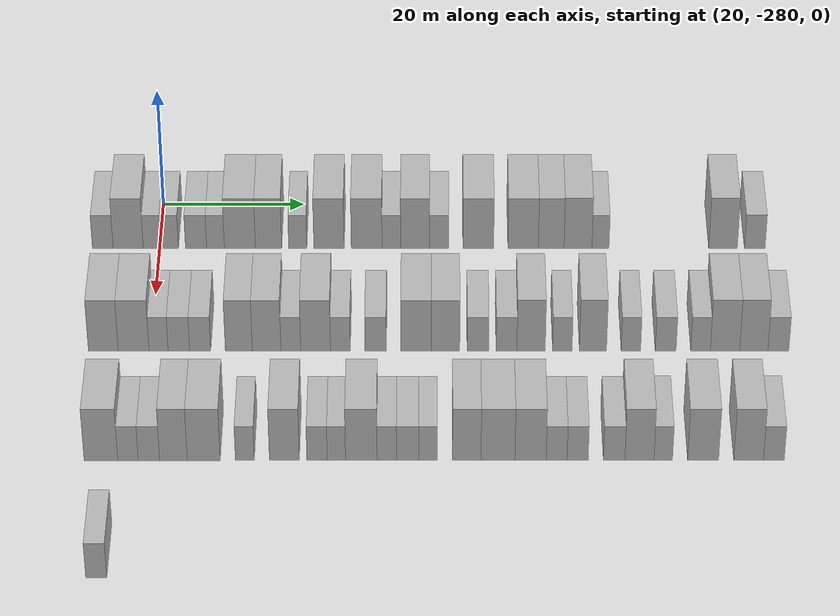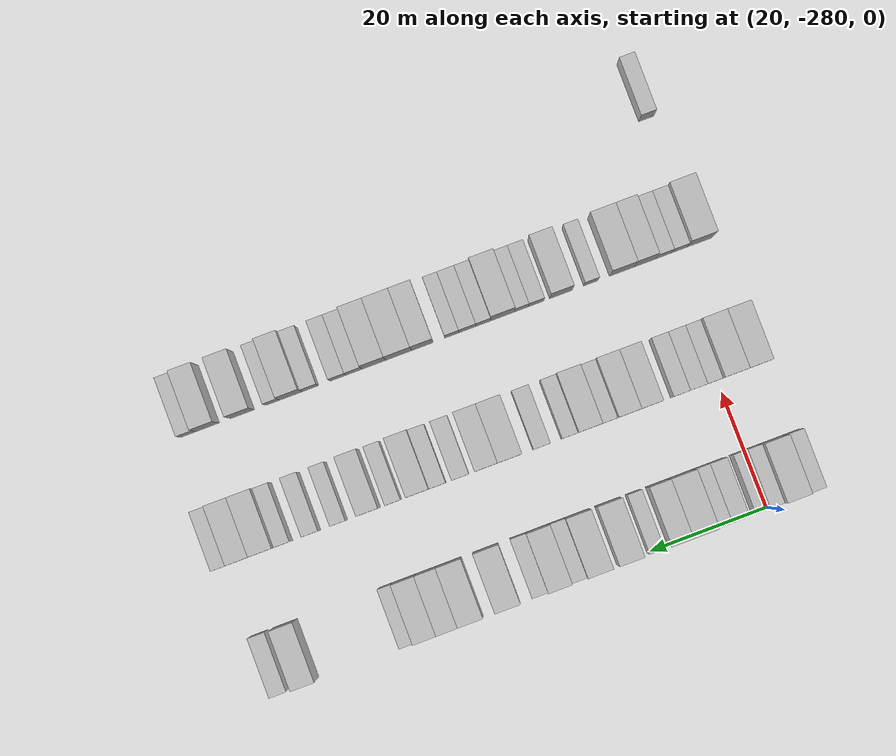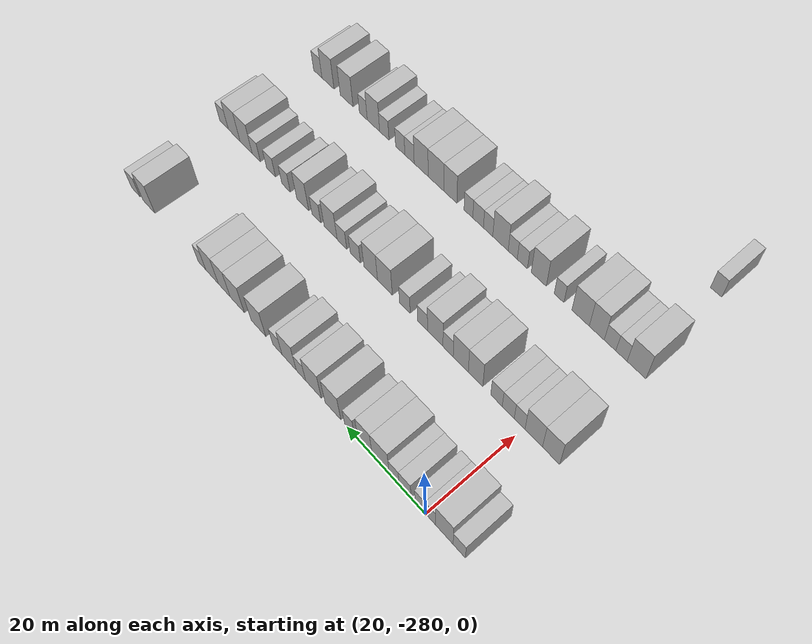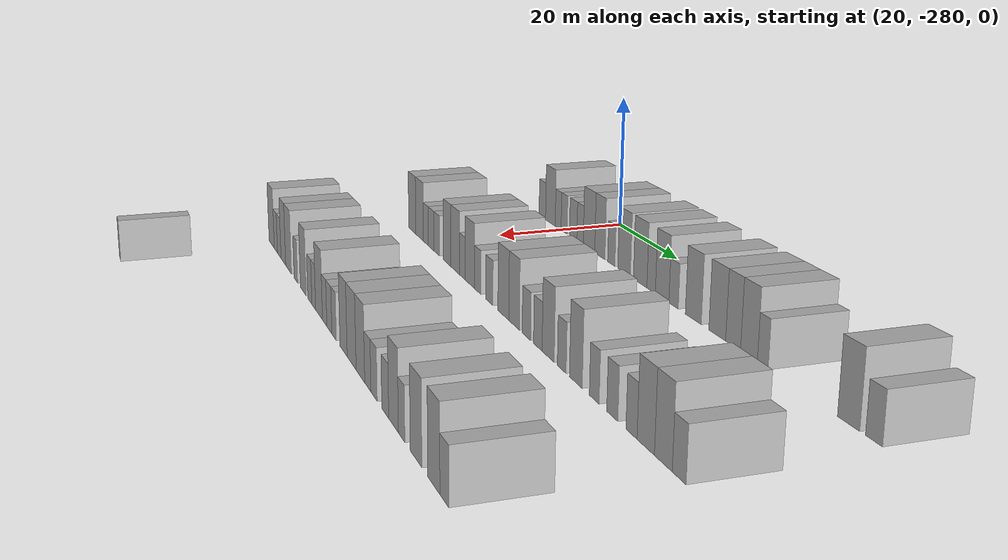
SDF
<sdf version="1.6">
 <world name="default">
  <model name="building_25">
   <static>1</static>
   <pose>25.0000 -288.0265 0 0.000000 0.000000 0.000000</pose>
   <link name="link">
    <pose>0 0 3.00 0 0 0</pose>
    <collision name="collision"><geometry><box><size>10.0000 2.8990 6.0000</size></box></geometry></collision>
    <visual name="visual">
     <cast_shadows>0</cast_shadows>
     <geometry><box><size>10.0000 2.8990 6.0000</size></box></geometry>
     <material>
      <script>
       <uri>model://HANNAS_wall/materials/scripts</uri>
       <uri>model://HANNAS_wall/materials/textures</uri>
       <name>vrc/HANNAS_wall</name>
      </script>
     </material>
    </visual>
   </link>
  </model>
  <model name="building_26">
   <static>1</static>
   <pose>25.0000 -284.4614 0 0.000000 0.000000 0.000000</pose>
   <link name="link">
    <pose>0 0 4.50 0 0 0</pose>
    <collision name="collision"><geometry><box><size>10.0000 4.2312 9.0000</size></box></geometry></collision>
    <visual name="visual">
     <cast_shadows>0</cast_shadows>
     <geometry><box><size>10.0000 4.2312 9.0000</size></box></geometry>
     <material>
      <script>
       <uri>model://HANNAS_wall/materials/scripts</uri>
       <uri>model://HANNAS_wall/materials/textures</uri>
       <name>vrc/HANNAS_wall</name>
      </script>
     </material>
    </visual>
   </link>
  </model>
  <model name="building_27">
   <static>1</static>
   <pose>25.0000 -281.1152 0 0.000000 0.000000 0.000000</pose>
   <link name="link">
    <pose>0 0 3.00 0 0 0</pose>
    <collision name="collision"><geometry><box><size>10.0000 2.4614 6.0000</size></box></geometry></collision>
    <visual name="visual">
     <cast_shadows>0</cast_shadows>
     <geometry><box><size>10.0000 2.4614 6.0000</size></box></geometry>
     <material>
      <script>
       <uri>model://HANNAS_wall/materials/scripts</uri>
       <uri>model://HANNAS_wall/materials/textures</uri>
       <name>vrc/HANNAS_wall</name>
      </script>
     </material>
    </visual>
   </link>
  </model>
  <model name="building_28">
   <static>1</static>
   <pose>25.0000 -278.6442 0 0.000000 0.000000 0.000000</pose>
   <link name="link">
    <pose>0 0 3.00 0 0 0</pose>
    <collision name="collision"><geometry><box><size>10.0000 2.4805 6.0000</size></box></geometry></collision>
    <visual name="visual">
     <cast_shadows>0</cast_shadows>
     <geometry><box><size>10.0000 2.4805 6.0000</size></box></geometry>
     <material>
      <script>
       <uri>model://HANNAS_wall/materials/scripts</uri>
       <uri>model://HANNAS_wall/materials/textures</uri>
       <name>vrc/HANNAS_wall</name>
      </script>
     </material>
    </visual>
   </link>
  </model>
  <model name="building_29">
   <static>1</static>
   <pose>25.0000 -274.9256 0 0.000000 0.000000 0.000000</pose>
   <link name="link">
    <pose>0 0 3.00 0 0 0</pose>
    <collision name="collision"><geometry><box><size>10.0000 2.9566 6.0000</size></box></geometry></collision>
    <visual name="visual">
     <cast_shadows>0</cast_shadows>
     <geometry><box><size>10.0000 2.9566 6.0000</size></box></geometry>
     <material>
      <script>
       <uri>model://HANNAS_wall/materials/scripts</uri>
       <uri>model://HANNAS_wall/materials/textures</uri>
       <name>vrc/HANNAS_wall</name>
      </script>
     </material>
    </visual>
   </link>
  </model>
  <model name="building_30">
   <static>1</static>
   <pose>25.0000 -272.1992 0 0.000000 0.000000 0.000000</pose>
   <link name="link">
    <pose>0 0 3.00 0 0 0</pose>
    <collision name="collision"><geometry><box><size>10.0000 2.4963 6.0000</size></box></geometry></collision>
    <visual name="visual">
     <cast_shadows>0</cast_shadows>
     <geometry><box><size>10.0000 2.4963 6.0000</size></box></geometry>
     <material>
      <script>
       <uri>model://HANNAS_wall/materials/scripts</uri>
       <uri>model://HANNAS_wall/materials/textures</uri>
       <name>vrc/HANNAS_wall</name>
      </script>
     </material>
    </visual>
   </link>
  </model>
  <model name="building_31">
   <static>1</static>
   <pose>25.0000 -268.7673 0 0.000000 0.000000 0.000000</pose>
   <link name="link">
    <pose>0 0 4.50 0 0 0</pose>
    <collision name="collision"><geometry><box><size>10.0000 4.3674 9.0000</size></box></geometry></collision>
    <visual name="visual">
     <cast_shadows>0</cast_shadows>
     <geometry><box><size>10.0000 4.3674 9.0000</size></box></geometry>
     <material>
      <script>
       <uri>model://HANNAS_wall/materials/scripts</uri>
       <uri>model://HANNAS_wall/materials/textures</uri>
       <name>vrc/HANNAS_wall</name>
      </script>
     </material>
    </visual>
   </link>
  </model>
  <model name="building_32">
   <static>1</static>
   <pose>25.0000 -264.7406 0 0.000000 0.000000 0.000000</pose>
   <link name="link">
    <pose>0 0 4.50 0 0 0</pose>
    <collision name="collision"><geometry><box><size>10.0000 3.6861 9.0000</size></box></geometry></collision>
    <visual name="visual">
     <cast_shadows>0</cast_shadows>
     <geometry><box><size>10.0000 3.6861 9.0000</size></box></geometry>
     <material>
      <script>
       <uri>model://HANNAS_wall/materials/scripts</uri>
       <uri>model://HANNAS_wall/materials/textures</uri>
       <name>vrc/HANNAS_wall</name>
      </script>
     </material>
    </visual>
   </link>
  </model>
  <model name="building_33">
   <static>1</static>
   <pose>25.0000 -260.6322 0 0.000000 0.000000 0.000000</pose>
   <link name="link">
    <pose>0 0 3.00 0 0 0</pose>
    <collision name="collision"><geometry><box><size>10.0000 2.5305 6.0000</size></box></geometry></collision>
    <visual name="visual">
     <cast_shadows>0</cast_shadows>
     <geometry><box><size>10.0000 2.5305 6.0000</size></box></geometry>
     <material>
      <script>
       <uri>model://HANNAS_wall/materials/scripts</uri>
       <uri>model://HANNAS_wall/materials/textures</uri>
       <name>vrc/HANNAS_wall</name>
      </script>
     </material>
    </visual>
   </link>
  </model>
  <model name="building_34">
   <static>1</static>
   <pose>25.0000 -256.2392 0 0.000000 0.000000 0.000000</pose>
   <link name="link">
    <pose>0 0 4.50 0 0 0</pose>
    <collision name="collision"><geometry><box><size>10.0000 4.2555 9.0000</size></box></geometry></collision>
    <visual name="visual">
     <cast_shadows>0</cast_shadows>
     <geometry><box><size>10.0000 4.2555 9.0000</size></box></geometry>
     <material>
      <script>
       <uri>model://HANNAS_wall/materials/scripts</uri>
       <uri>model://HANNAS_wall/materials/textures</uri>
       <name>vrc/HANNAS_wall</name>
      </script>
     </material>
    </visual>
   </link>
  </model>
  <model name="building_35">
   <static>1</static>
   <pose>25.0000 -250.9483 0 0.000000 0.000000 0.000000</pose>
   <link name="link">
    <pose>0 0 4.50 0 0 0</pose>
    <collision name="collision"><geometry><box><size>10.0000 4.3264 9.0000</size></box></geometry></collision>
    <visual name="visual">
     <cast_shadows>0</cast_shadows>
     <geometry><box><size>10.0000 4.3264 9.0000</size></box></geometry>
     <material>
      <script>
       <uri>model://HANNAS_wall/materials/scripts</uri>
       <uri>model://HANNAS_wall/materials/textures</uri>
       <name>vrc/HANNAS_wall</name>
      </script>
     </material>
    </visual>
   </link>
  </model>
  <model name="building_36">
   <static>1</static>
   <pose>25.0000 -247.4791 0 0.000000 0.000000 0.000000</pose>
   <link name="link">
    <pose>0 0 3.00 0 0 0</pose>
    <collision name="collision"><geometry><box><size>10.0000 2.6121 6.0000</size></box></geometry></collision>
    <visual name="visual">
     <cast_shadows>0</cast_shadows>
     <geometry><box><size>10.0000 2.6121 6.0000</size></box></geometry>
     <material>
      <script>
       <uri>model://HANNAS_wall/materials/scripts</uri>
       <uri>model://HANNAS_wall/materials/textures</uri>
       <name>vrc/HANNAS_wall</name>
      </script>
     </material>
    </visual>
   </link>
  </model>
  <model name="building_37">
   <static>1</static>
   <pose>25.0000 -244.1470 0 0.000000 0.000000 0.000000</pose>
   <link name="link">
    <pose>0 0 4.50 0 0 0</pose>
    <collision name="collision"><geometry><box><size>10.0000 4.0521 9.0000</size></box></geometry></collision>
    <visual name="visual">
     <cast_shadows>0</cast_shadows>
     <geometry><box><size>10.0000 4.0521 9.0000</size></box></geometry>
     <material>
      <script>
       <uri>model://HANNAS_wall/materials/scripts</uri>
       <uri>model://HANNAS_wall/materials/textures</uri>
       <name>vrc/HANNAS_wall</name>
      </script>
     </material>
    </visual>
   </link>
  </model>
  <model name="building_38">
   <static>1</static>
   <pose>25.0000 -240.7770 0 0.000000 0.000000 0.000000</pose>
   <link name="link">
    <pose>0 0 3.00 0 0 0</pose>
    <collision name="collision"><geometry><box><size>10.0000 2.6880 6.0000</size></box></geometry></collision>
    <visual name="visual">
     <cast_shadows>0</cast_shadows>
     <geometry><box><size>10.0000 2.6880 6.0000</size></box></geometry>
     <material>
      <script>
       <uri>model://HANNAS_wall/materials/scripts</uri>
       <uri>model://HANNAS_wall/materials/textures</uri>
       <name>vrc/HANNAS_wall</name>
      </script>
     </material>
    </visual>
   </link>
  </model>
  <model name="building_39">
   <static>1</static>
   <pose>25.0000 -235.2704 0 0.000000 0.000000 0.000000</pose>
   <link name="link">
    <pose>0 0 4.50 0 0 0</pose>
    <collision name="collision"><geometry><box><size>10.0000 4.3251 9.0000</size></box></geometry></collision>
    <visual name="visual">
     <cast_shadows>0</cast_shadows>
     <geometry><box><size>10.0000 4.3251 9.0000</size></box></geometry>
     <material>
      <script>
       <uri>model://HANNAS_wall/materials/scripts</uri>
       <uri>model://HANNAS_wall/materials/textures</uri>
       <name>vrc/HANNAS_wall</name>
      </script>
     </material>
    </visual>
   </link>
  </model>
  <model name="building_40">
   <static>1</static>
   <pose>25.0000 -228.9742 0 0.000000 0.000000 0.000000</pose>
   <link name="link">
    <pose>0 0 4.50 0 0 0</pose>
    <collision name="collision"><geometry><box><size>10.0000 4.2672 9.0000</size></box></geometry></collision>
    <visual name="visual">
     <cast_shadows>0</cast_shadows>
     <geometry><box><size>10.0000 4.2672 9.0000</size></box></geometry>
     <material>
      <script>
       <uri>model://HANNAS_wall/materials/scripts</uri>
       <uri>model://HANNAS_wall/materials/textures</uri>
       <name>vrc/HANNAS_wall</name>
      </script>
     </material>
    </visual>
   </link>
  </model>
  <model name="building_41">
   <static>1</static>
   <pose>25.0000 -225.0343 0 0.000000 0.000000 0.000000</pose>
   <link name="link">
    <pose>0 0 4.50 0 0 0</pose>
    <collision name="collision"><geometry><box><size>10.0000 3.6128 9.0000</size></box></geometry></collision>
    <visual name="visual">
     <cast_shadows>0</cast_shadows>
     <geometry><box><size>10.0000 3.6128 9.0000</size></box></geometry>
     <material>
      <script>
       <uri>model://HANNAS_wall/materials/scripts</uri>
       <uri>model://HANNAS_wall/materials/textures</uri>
       <name>vrc/HANNAS_wall</name>
      </script>
     </material>
    </visual>
   </link>
  </model>
  <model name="building_42">
   <static>1</static>
   <pose>25.0000 -221.2701 0 0.000000 0.000000 0.000000</pose>
   <link name="link">
    <pose>0 0 4.50 0 0 0</pose>
    <collision name="collision"><geometry><box><size>10.0000 3.9156 9.0000</size></box></geometry></collision>
    <visual name="visual">
     <cast_shadows>0</cast_shadows>
     <geometry><box><size>10.0000 3.9156 9.0000</size></box></geometry>
     <material>
      <script>
       <uri>model://HANNAS_wall/materials/scripts</uri>
       <uri>model://HANNAS_wall/materials/textures</uri>
       <name>vrc/HANNAS_wall</name>
      </script>
     </material>
    </visual>
   </link>
  </model>
  <model name="building_43">
   <static>1</static>
   <pose>25.0000 -218.1112 0 0.000000 0.000000 0.000000</pose>
   <link name="link">
    <pose>0 0 3.00 0 0 0</pose>
    <collision name="collision"><geometry><box><size>10.0000 2.4021 6.0000</size></box></geometry></collision>
    <visual name="visual">
     <cast_shadows>0</cast_shadows>
     <geometry><box><size>10.0000 2.4021 6.0000</size></box></geometry>
     <material>
      <script>
       <uri>model://HANNAS_wall/materials/scripts</uri>
       <uri>model://HANNAS_wall/materials/textures</uri>
       <name>vrc/HANNAS_wall</name>
      </script>
     </material>
    </visual>
   </link>
  </model>
  <model name="building_44">
   <static>1</static>
   <pose>25.0000 -200.8875 0 0.000000 0.000000 0.000000</pose>
   <link name="link">
    <pose>0 0 4.50 0 0 0</pose>
    <collision name="collision"><geometry><box><size>10.0000 4.0151 9.0000</size></box></geometry></collision>
    <visual name="visual">
     <cast_shadows>0</cast_shadows>
     <geometry><box><size>10.0000 4.0151 9.0000</size></box></geometry>
     <material>
      <script>
       <uri>model://HANNAS_wall/materials/scripts</uri>
       <uri>model://HANNAS_wall/materials/textures</uri>
       <name>vrc/HANNAS_wall</name>
      </script>
     </material>
    </visual>
   </link>
  </model>
  <model name="building_45">
   <static>1</static>
   <pose>25.0000 -196.4308 0 0.000000 0.000000 0.000000</pose>
   <link name="link">
    <pose>0 0 3.00 0 0 0</pose>
    <collision name="collision"><geometry><box><size>10.0000 2.8984 6.0000</size></box></geometry></collision>
    <visual name="visual">
     <cast_shadows>0</cast_shadows>
     <geometry><box><size>10.0000 2.8984 6.0000</size></box></geometry>
     <material>
      <script>
       <uri>model://HANNAS_wall/materials/scripts</uri>
       <uri>model://HANNAS_wall/materials/textures</uri>
       <name>vrc/HANNAS_wall</name>
      </script>
     </material>
    </visual>
   </link>
  </model>
  <model name="building_215">
   <static>1</static>
   <pose>47.0000 -286.4826 0 0.000000 0.000000 0.000000</pose>
   <link name="link">
    <pose>0 0 4.50 0 0 0</pose>
    <collision name="collision"><geometry><box><size>10.0000 4.0450 9.0000</size></box></geometry></collision>
    <visual name="visual">
     <cast_shadows>0</cast_shadows>
     <geometry><box><size>10.0000 4.0450 9.0000</size></box></geometry>
     <material>
      <script>
       <uri>model://HANNAS_wall/materials/scripts</uri>
       <uri>model://HANNAS_wall/materials/textures</uri>
       <name>vrc/HANNAS_wall</name>
      </script>
     </material>
    </visual>
   </link>
  </model>
  <model name="building_216">
   <static>1</static>
   <pose>47.0000 -282.3678 0 0.000000 0.000000 0.000000</pose>
   <link name="link">
    <pose>0 0 4.50 0 0 0</pose>
    <collision name="collision"><geometry><box><size>10.0000 4.1846 9.0000</size></box></geometry></collision>
    <visual name="visual">
     <cast_shadows>0</cast_shadows>
     <geometry><box><size>10.0000 4.1846 9.0000</size></box></geometry>
     <material>
      <script>
       <uri>model://HANNAS_wall/materials/scripts</uri>
       <uri>model://HANNAS_wall/materials/textures</uri>
       <name>vrc/HANNAS_wall</name>
      </script>
     </material>
    </visual>
   </link>
  </model>
  <model name="building_217">
   <static>1</static>
   <pose>47.0000 -278.9745 0 0.000000 0.000000 0.000000</pose>
   <link name="link">
    <pose>0 0 3.00 0 0 0</pose>
    <collision name="collision"><geometry><box><size>10.0000 2.6021 6.0000</size></box></geometry></collision>
    <visual name="visual">
     <cast_shadows>0</cast_shadows>
     <geometry><box><size>10.0000 2.6021 6.0000</size></box></geometry>
     <material>
      <script>
       <uri>model://HANNAS_wall/materials/scripts</uri>
       <uri>model://HANNAS_wall/materials/textures</uri>
       <name>vrc/HANNAS_wall</name>
      </script>
     </material>
    </visual>
   </link>
  </model>
  <model name="building_218">
   <static>1</static>
   <pose>47.0000 -276.2022 0 0.000000 0.000000 0.000000</pose>
   <link name="link">
    <pose>0 0 3.00 0 0 0</pose>
    <collision name="collision"><geometry><box><size>10.0000 2.9424 6.0000</size></box></geometry></collision>
    <visual name="visual">
     <cast_shadows>0</cast_shadows>
     <geometry><box><size>10.0000 2.9424 6.0000</size></box></geometry>
     <material>
      <script>
       <uri>model://HANNAS_wall/materials/scripts</uri>
       <uri>model://HANNAS_wall/materials/textures</uri>
       <name>vrc/HANNAS_wall</name>
      </script>
     </material>
    </visual>
   </link>
  </model>
  <model name="building_219">
   <static>1</static>
   <pose>47.0000 -273.3032 0 0.000000 0.000000 0.000000</pose>
   <link name="link">
    <pose>0 0 3.00 0 0 0</pose>
    <collision name="collision"><geometry><box><size>10.0000 2.8556 6.0000</size></box></geometry></collision>
    <visual name="visual">
     <cast_shadows>0</cast_shadows>
     <geometry><box><size>10.0000 2.8556 6.0000</size></box></geometry>
     <material>
      <script>
       <uri>model://HANNAS_wall/materials/scripts</uri>
       <uri>model://HANNAS_wall/materials/textures</uri>
       <name>vrc/HANNAS_wall</name>
      </script>
     </material>
    </visual>
   </link>
  </model>
  <model name="building_220">
   <static>1</static>
   <pose>47.0000 -268.0409 0 0.000000 0.000000 0.000000</pose>
   <link name="link">
    <pose>0 0 4.50 0 0 0</pose>
    <collision name="collision"><geometry><box><size>10.0000 3.6691 9.0000</size></box></geometry></collision>
    <visual name="visual">
     <cast_shadows>0</cast_shadows>
     <geometry><box><size>10.0000 3.6691 9.0000</size></box></geometry>
     <material>
      <script>
       <uri>model://HANNAS_wall/materials/scripts</uri>
       <uri>model://HANNAS_wall/materials/textures</uri>
       <name>vrc/HANNAS_wall</name>
      </script>
     </material>
    </visual>
   </link>
  </model>
  <model name="building_221">
   <static>1</static>
   <pose>47.0000 -264.2662 0 0.000000 0.000000 0.000000</pose>
   <link name="link">
    <pose>0 0 4.50 0 0 0</pose>
    <collision name="collision"><geometry><box><size>10.0000 3.8802 9.0000</size></box></geometry></collision>
    <visual name="visual">
     <cast_shadows>0</cast_shadows>
     <geometry><box><size>10.0000 3.8802 9.0000</size></box></geometry>
     <material>
      <script>
       <uri>model://HANNAS_wall/materials/scripts</uri>
       <uri>model://HANNAS_wall/materials/textures</uri>
       <name>vrc/HANNAS_wall</name>
      </script>
     </material>
    </visual>
   </link>
  </model>
  <model name="building_222">
   <static>1</static>
   <pose>47.0000 -260.9822 0 0.000000 0.000000 0.000000</pose>
   <link name="link">
    <pose>0 0 3.00 0 0 0</pose>
    <collision name="collision"><geometry><box><size>10.0000 2.6878 6.0000</size></box></geometry></collision>
    <visual name="visual">
     <cast_shadows>0</cast_shadows>
     <geometry><box><size>10.0000 2.6878 6.0000</size></box></geometry>
     <material>
      <script>
       <uri>model://HANNAS_wall/materials/scripts</uri>
       <uri>model://HANNAS_wall/materials/textures</uri>
       <name>vrc/HANNAS_wall</name>
      </script>
     </material>
    </visual>
   </link>
  </model>
  <model name="building_223">
   <static>1</static>
   <pose>47.0000 -257.6058 0 0.000000 0.000000 0.000000</pose>
   <link name="link">
    <pose>0 0 4.50 0 0 0</pose>
    <collision name="collision"><geometry><box><size>10.0000 4.0650 9.0000</size></box></geometry></collision>
    <visual name="visual">
     <cast_shadows>0</cast_shadows>
     <geometry><box><size>10.0000 4.0650 9.0000</size></box></geometry>
     <material>
      <script>
       <uri>model://HANNAS_wall/materials/scripts</uri>
       <uri>model://HANNAS_wall/materials/textures</uri>
       <name>vrc/HANNAS_wall</name>
      </script>
     </material>
    </visual>
   </link>
  </model>
  <model name="building_224">
   <static>1</static>
   <pose>47.0000 -254.2306 0 0.000000 0.000000 0.000000</pose>
   <link name="link">
    <pose>0 0 3.00 0 0 0</pose>
    <collision name="collision"><geometry><box><size>10.0000 2.6854 6.0000</size></box></geometry></collision>
    <visual name="visual">
     <cast_shadows>0</cast_shadows>
     <geometry><box><size>10.0000 2.6854 6.0000</size></box></geometry>
     <material>
      <script>
       <uri>model://HANNAS_wall/materials/scripts</uri>
       <uri>model://HANNAS_wall/materials/textures</uri>
       <name>vrc/HANNAS_wall</name>
      </script>
     </material>
    </visual>
   </link>
  </model>
  <model name="building_225">
   <static>1</static>
   <pose>47.0000 -249.4381 0 0.000000 0.000000 0.000000</pose>
   <link name="link">
    <pose>0 0 3.00 0 0 0</pose>
    <collision name="collision"><geometry><box><size>10.0000 2.8995 6.0000</size></box></geometry></collision>
    <visual name="visual">
     <cast_shadows>0</cast_shadows>
     <geometry><box><size>10.0000 2.8995 6.0000</size></box></geometry>
     <material>
      <script>
       <uri>model://HANNAS_wall/materials/scripts</uri>
       <uri>model://HANNAS_wall/materials/textures</uri>
       <name>vrc/HANNAS_wall</name>
      </script>
     </material>
    </visual>
   </link>
  </model>
  <model name="building_226">
   <static>1</static>
   <pose>47.0000 -243.9204 0 0.000000 0.000000 0.000000</pose>
   <link name="link">
    <pose>0 0 4.50 0 0 0</pose>
    <collision name="collision"><geometry><box><size>10.0000 4.1358 9.0000</size></box></geometry></collision>
    <visual name="visual">
     <cast_shadows>0</cast_shadows>
     <geometry><box><size>10.0000 4.1358 9.0000</size></box></geometry>
     <material>
      <script>
       <uri>model://HANNAS_wall/materials/scripts</uri>
       <uri>model://HANNAS_wall/materials/textures</uri>
       <name>vrc/HANNAS_wall</name>
      </script>
     </material>
    </visual>
   </link>
  </model>
  <model name="building_227">
   <static>1</static>
   <pose>47.0000 -239.9258 0 0.000000 0.000000 0.000000</pose>
   <link name="link">
    <pose>0 0 4.50 0 0 0</pose>
    <collision name="collision"><geometry><box><size>10.0000 3.8535 9.0000</size></box></geometry></collision>
    <visual name="visual">
     <cast_shadows>0</cast_shadows>
     <geometry><box><size>10.0000 3.8535 9.0000</size></box></geometry>
     <material>
      <script>
       <uri>model://HANNAS_wall/materials/scripts</uri>
       <uri>model://HANNAS_wall/materials/textures</uri>
       <name>vrc/HANNAS_wall</name>
      </script>
     </material>
    </visual>
   </link>
  </model>
  <model name="building_228">
   <static>1</static>
   <pose>47.0000 -235.5267 0 0.000000 0.000000 0.000000</pose>
   <link name="link">
    <pose>0 0 3.00 0 0 0</pose>
    <collision name="collision"><geometry><box><size>10.0000 2.9448 6.0000</size></box></geometry></collision>
    <visual name="visual">
     <cast_shadows>0</cast_shadows>
     <geometry><box><size>10.0000 2.9448 6.0000</size></box></geometry>
     <material>
      <script>
       <uri>model://HANNAS_wall/materials/scripts</uri>
       <uri>model://HANNAS_wall/materials/textures</uri>
       <name>vrc/HANNAS_wall</name>
      </script>
     </material>
    </visual>
   </link>
  </model>
  <model name="building_229">
   <static>1</static>
   <pose>47.0000 -231.6376 0 0.000000 0.000000 0.000000</pose>
   <link name="link">
    <pose>0 0 3.00 0 0 0</pose>
    <collision name="collision"><geometry><box><size>10.0000 2.8334 6.0000</size></box></geometry></collision>
    <visual name="visual">
     <cast_shadows>0</cast_shadows>
     <geometry><box><size>10.0000 2.8334 6.0000</size></box></geometry>
     <material>
      <script>
       <uri>model://HANNAS_wall/materials/scripts</uri>
       <uri>model://HANNAS_wall/materials/textures</uri>
       <name>vrc/HANNAS_wall</name>
      </script>
     </material>
    </visual>
   </link>
  </model>
  <model name="building_230">
   <static>1</static>
   <pose>47.0000 -228.2980 0 0.000000 0.000000 0.000000</pose>
   <link name="link">
    <pose>0 0 4.50 0 0 0</pose>
    <collision name="collision"><geometry><box><size>10.0000 3.8458 9.0000</size></box></geometry></collision>
    <visual name="visual">
     <cast_shadows>0</cast_shadows>
     <geometry><box><size>10.0000 3.8458 9.0000</size></box></geometry>
     <material>
      <script>
       <uri>model://HANNAS_wall/materials/scripts</uri>
       <uri>model://HANNAS_wall/materials/textures</uri>
       <name>vrc/HANNAS_wall</name>
      </script>
     </material>
    </visual>
   </link>
  </model>
  <model name="building_231">
   <static>1</static>
   <pose>47.0000 -224.0482 0 0.000000 0.000000 0.000000</pose>
   <link name="link">
    <pose>0 0 3.00 0 0 0</pose>
    <collision name="collision"><geometry><box><size>10.0000 2.6537 6.0000</size></box></geometry></collision>
    <visual name="visual">
     <cast_shadows>0</cast_shadows>
     <geometry><box><size>10.0000 2.6537 6.0000</size></box></geometry>
     <material>
      <script>
       <uri>model://HANNAS_wall/materials/scripts</uri>
       <uri>model://HANNAS_wall/materials/textures</uri>
       <name>vrc/HANNAS_wall</name>
      </script>
     </material>
    </visual>
   </link>
  </model>
  <model name="building_232">
   <static>1</static>
   <pose>47.0000 -219.8827 0 0.000000 0.000000 0.000000</pose>
   <link name="link">
    <pose>0 0 4.50 0 0 0</pose>
    <collision name="collision"><geometry><box><size>10.0000 3.6773 9.0000</size></box></geometry></collision>
    <visual name="visual">
     <cast_shadows>0</cast_shadows>
     <geometry><box><size>10.0000 3.6773 9.0000</size></box></geometry>
     <material>
      <script>
       <uri>model://HANNAS_wall/materials/scripts</uri>
       <uri>model://HANNAS_wall/materials/textures</uri>
       <name>vrc/HANNAS_wall</name>
      </script>
     </material>
    </visual>
   </link>
  </model>
  <model name="building_233">
   <static>1</static>
   <pose>47.0000 -214.7263 0 0.000000 0.000000 0.000000</pose>
   <link name="link">
    <pose>0 0 3.00 0 0 0</pose>
    <collision name="collision"><geometry><box><size>10.0000 2.6353 6.0000</size></box></geometry></collision>
    <visual name="visual">
     <cast_shadows>0</cast_shadows>
     <geometry><box><size>10.0000 2.6353 6.0000</size></box></geometry>
     <material>
      <script>
       <uri>model://HANNAS_wall/materials/scripts</uri>
       <uri>model://HANNAS_wall/materials/textures</uri>
       <name>vrc/HANNAS_wall</name>
      </script>
     </material>
    </visual>
   </link>
  </model>
  <model name="building_234">
   <static>1</static>
   <pose>47.0000 -209.9913 0 0.000000 0.000000 0.000000</pose>
   <link name="link">
    <pose>0 0 3.00 0 0 0</pose>
    <collision name="collision"><geometry><box><size>10.0000 2.8346 6.0000</size></box></geometry></collision>
    <visual name="visual">
     <cast_shadows>0</cast_shadows>
     <geometry><box><size>10.0000 2.8346 6.0000</size></box></geometry>
     <material>
      <script>
       <uri>model://HANNAS_wall/materials/scripts</uri>
       <uri>model://HANNAS_wall/materials/textures</uri>
       <name>vrc/HANNAS_wall</name>
      </script>
     </material>
    </visual>
   </link>
  </model>
  <model name="building_235">
   <static>1</static>
   <pose>47.0000 -205.2465 0 0.000000 0.000000 0.000000</pose>
   <link name="link">
    <pose>0 0 3.00 0 0 0</pose>
    <collision name="collision"><geometry><box><size>10.0000 2.6551 6.0000</size></box></geometry></collision>
    <visual name="visual">
     <cast_shadows>0</cast_shadows>
     <geometry><box><size>10.0000 2.6551 6.0000</size></box></geometry>
     <material>
      <script>
       <uri>model://HANNAS_wall/materials/scripts</uri>
       <uri>model://HANNAS_wall/materials/textures</uri>
       <name>vrc/HANNAS_wall</name>
      </script>
     </material>
    </visual>
   </link>
  </model>
  <model name="building_236">
   <static>1</static>
   <pose>47.0000 -201.9274 0 0.000000 0.000000 0.000000</pose>
   <link name="link">
    <pose>0 0 4.50 0 0 0</pose>
    <collision name="collision"><geometry><box><size>10.0000 3.9831 9.0000</size></box></geometry></collision>
    <visual name="visual">
     <cast_shadows>0</cast_shadows>
     <geometry><box><size>10.0000 3.9831 9.0000</size></box></geometry>
     <material>
      <script>
       <uri>model://HANNAS_wall/materials/scripts</uri>
       <uri>model://HANNAS_wall/materials/textures</uri>
       <name>vrc/HANNAS_wall</name>
      </script>
     </material>
    </visual>
   </link>
  </model>
  <model name="building_237">
   <static>1</static>
   <pose>47.0000 -198.0136 0 0.000000 0.000000 0.000000</pose>
   <link name="link">
    <pose>0 0 4.50 0 0 0</pose>
    <collision name="collision"><geometry><box><size>10.0000 3.8446 9.0000</size></box></geometry></collision>
    <visual name="visual">
     <cast_shadows>0</cast_shadows>
     <geometry><box><size>10.0000 3.8446 9.0000</size></box></geometry>
     <material>
      <script>
       <uri>model://HANNAS_wall/materials/scripts</uri>
       <uri>model://HANNAS_wall/materials/textures</uri>
       <name>vrc/HANNAS_wall</name>
      </script>
     </material>
    </visual>
   </link>
  </model>
  <model name="building_238">
   <static>1</static>
   <pose>47.0000 -194.6655 0 0.000000 0.000000 0.000000</pose>
   <link name="link">
    <pose>0 0 3.00 0 0 0</pose>
    <collision name="collision"><geometry><box><size>10.0000 2.8516 6.0000</size></box></geometry></collision>
    <visual name="visual">
     <cast_shadows>0</cast_shadows>
     <geometry><box><size>10.0000 2.8516 6.0000</size></box></geometry>
     <material>
      <script>
       <uri>model://HANNAS_wall/materials/scripts</uri>
       <uri>model://HANNAS_wall/materials/textures</uri>
       <name>vrc/HANNAS_wall</name>
      </script>
     </material>
    </visual>
   </link>
  </model>
  <model name="building_398">
   <static>1</static>
   <pose>69.0000 -285.3187 0 0.000000 0.000000 0.000000</pose>
   <link name="link">
    <pose>0 0 4.50 0 0 0</pose>
    <collision name="collision"><geometry><box><size>10.0000 4.4286 9.0000</size></box></geometry></collision>
    <visual name="visual">
     <cast_shadows>0</cast_shadows>
     <geometry><box><size>10.0000 4.4286 9.0000</size></box></geometry>
     <material>
      <script>
       <uri>model://HANNAS_wall/materials/scripts</uri>
       <uri>model://HANNAS_wall/materials/textures</uri>
       <name>vrc/HANNAS_wall</name>
      </script>
     </material>
    </visual>
   </link>
  </model>
  <model name="building_399">
   <static>1</static>
   <pose>69.0000 -281.7624 0 0.000000 0.000000 0.000000</pose>
   <link name="link">
    <pose>0 0 3.00 0 0 0</pose>
    <collision name="collision"><geometry><box><size>10.0000 2.6841 6.0000</size></box></geometry></collision>
    <visual name="visual">
     <cast_shadows>0</cast_shadows>
     <geometry><box><size>10.0000 2.6841 6.0000</size></box></geometry>
     <material>
      <script>
       <uri>model://HANNAS_wall/materials/scripts</uri>
       <uri>model://HANNAS_wall/materials/textures</uri>
       <name>vrc/HANNAS_wall</name>
      </script>
     </material>
    </visual>
   </link>
  </model>
  <model name="building_400">
   <static>1</static>
   <pose>69.0000 -279.0154 0 0.000000 0.000000 0.000000</pose>
   <link name="link">
    <pose>0 0 3.00 0 0 0</pose>
    <collision name="collision"><geometry><box><size>10.0000 2.8099 6.0000</size></box></geometry></collision>
    <visual name="visual">
     <cast_shadows>0</cast_shadows>
     <geometry><box><size>10.0000 2.8099 6.0000</size></box></geometry>
     <material>
      <script>
       <uri>model://HANNAS_wall/materials/scripts</uri>
       <uri>model://HANNAS_wall/materials/textures</uri>
       <name>vrc/HANNAS_wall</name>
      </script>
     </material>
    </visual>
   </link>
  </model>
  <model name="building_401">
   <static>1</static>
   <pose>69.0000 -275.7851 0 0.000000 0.000000 0.000000</pose>
   <link name="link">
    <pose>0 0 4.50 0 0 0</pose>
    <collision name="collision"><geometry><box><size>10.0000 3.6508 9.0000</size></box></geometry></collision>
    <visual name="visual">
     <cast_shadows>0</cast_shadows>
     <geometry><box><size>10.0000 3.6508 9.0000</size></box></geometry>
     <material>
      <script>
       <uri>model://HANNAS_wall/materials/scripts</uri>
       <uri>model://HANNAS_wall/materials/textures</uri>
       <name>vrc/HANNAS_wall</name>
      </script>
     </material>
    </visual>
   </link>
  </model>
  <model name="building_402">
   <static>1</static>
   <pose>69.0000 -271.7953 0 0.000000 0.000000 0.000000</pose>
   <link name="link">
    <pose>0 0 4.50 0 0 0</pose>
    <collision name="collision"><geometry><box><size>10.0000 4.3286 9.0000</size></box></geometry></collision>
    <visual name="visual">
     <cast_shadows>0</cast_shadows>
     <geometry><box><size>10.0000 4.3286 9.0000</size></box></geometry>
     <material>
      <script>
       <uri>model://HANNAS_wall/materials/scripts</uri>
       <uri>model://HANNAS_wall/materials/textures</uri>
       <name>vrc/HANNAS_wall</name>
      </script>
     </material>
    </visual>
   </link>
  </model>
  <model name="building_403">
   <static>1</static>
   <pose>69.0000 -266.3912 0 0.000000 0.000000 0.000000</pose>
   <link name="link">
    <pose>0 0 3.00 0 0 0</pose>
    <collision name="collision"><geometry><box><size>10.0000 2.4796 6.0000</size></box></geometry></collision>
    <visual name="visual">
     <cast_shadows>0</cast_shadows>
     <geometry><box><size>10.0000 2.4796 6.0000</size></box></geometry>
     <material>
      <script>
       <uri>model://HANNAS_wall/materials/scripts</uri>
       <uri>model://HANNAS_wall/materials/textures</uri>
       <name>vrc/HANNAS_wall</name>
      </script>
     </material>
    </visual>
   </link>
  </model>
  <model name="building_404">
   <static>1</static>
   <pose>69.0000 -261.1895 0 0.000000 0.000000 0.000000</pose>
   <link name="link">
    <pose>0 0 4.50 0 0 0</pose>
    <collision name="collision"><geometry><box><size>10.0000 3.9238 9.0000</size></box></geometry></collision>
    <visual name="visual">
     <cast_shadows>0</cast_shadows>
     <geometry><box><size>10.0000 3.9238 9.0000</size></box></geometry>
     <material>
      <script>
       <uri>model://HANNAS_wall/materials/scripts</uri>
       <uri>model://HANNAS_wall/materials/textures</uri>
       <name>vrc/HANNAS_wall</name>
      </script>
     </material>
    </visual>
   </link>
  </model>
  <model name="building_405">
   <static>1</static>
   <pose>69.0000 -256.8933 0 0.000000 0.000000 0.000000</pose>
   <link name="link">
    <pose>0 0 3.00 0 0 0</pose>
    <collision name="collision"><geometry><box><size>10.0000 2.6687 6.0000</size></box></geometry></collision>
    <visual name="visual">
     <cast_shadows>0</cast_shadows>
     <geometry><box><size>10.0000 2.6687 6.0000</size></box></geometry>
     <material>
      <script>
       <uri>model://HANNAS_wall/materials/scripts</uri>
       <uri>model://HANNAS_wall/materials/textures</uri>
       <name>vrc/HANNAS_wall</name>
      </script>
     </material>
    </visual>
   </link>
  </model>
  <model name="building_406">
   <static>1</static>
   <pose>69.0000 -254.3530 0 0.000000 0.000000 0.000000</pose>
   <link name="link">
    <pose>0 0 3.00 0 0 0</pose>
    <collision name="collision"><geometry><box><size>10.0000 2.4118 6.0000</size></box></geometry></collision>
    <visual name="visual">
     <cast_shadows>0</cast_shadows>
     <geometry><box><size>10.0000 2.4118 6.0000</size></box></geometry>
     <material>
      <script>
       <uri>model://HANNAS_wall/materials/scripts</uri>
       <uri>model://HANNAS_wall/materials/textures</uri>
       <name>vrc/HANNAS_wall</name>
      </script>
     </material>
    </visual>
   </link>
  </model>
  <model name="building_407">
   <static>1</static>
   <pose>69.0000 -251.0694 0 0.000000 0.000000 0.000000</pose>
   <link name="link">
    <pose>0 0 4.50 0 0 0</pose>
    <collision name="collision"><geometry><box><size>10.0000 4.1555 9.0000</size></box></geometry></collision>
    <visual name="visual">
     <cast_shadows>0</cast_shadows>
     <geometry><box><size>10.0000 4.1555 9.0000</size></box></geometry>
     <material>
      <script>
       <uri>model://HANNAS_wall/materials/scripts</uri>
       <uri>model://HANNAS_wall/materials/textures</uri>
       <name>vrc/HANNAS_wall</name>
      </script>
     </material>
    </visual>
   </link>
  </model>
  <model name="building_408">
   <static>1</static>
   <pose>69.0000 -247.7159 0 0.000000 0.000000 0.000000</pose>
   <link name="link">
    <pose>0 0 3.00 0 0 0</pose>
    <collision name="collision"><geometry><box><size>10.0000 2.5515 6.0000</size></box></geometry></collision>
    <visual name="visual">
     <cast_shadows>0</cast_shadows>
     <geometry><box><size>10.0000 2.5515 6.0000</size></box></geometry>
     <material>
      <script>
       <uri>model://HANNAS_wall/materials/scripts</uri>
       <uri>model://HANNAS_wall/materials/textures</uri>
       <name>vrc/HANNAS_wall</name>
      </script>
     </material>
    </visual>
   </link>
  </model>
  <model name="building_409">
   <static>1</static>
   <pose>69.0000 -244.9791 0 0.000000 0.000000 0.000000</pose>
   <link name="link">
    <pose>0 0 3.00 0 0 0</pose>
    <collision name="collision"><geometry><box><size>10.0000 2.9221 6.0000</size></box></geometry></collision>
    <visual name="visual">
     <cast_shadows>0</cast_shadows>
     <geometry><box><size>10.0000 2.9221 6.0000</size></box></geometry>
     <material>
      <script>
       <uri>model://HANNAS_wall/materials/scripts</uri>
       <uri>model://HANNAS_wall/materials/textures</uri>
       <name>vrc/HANNAS_wall</name>
      </script>
     </material>
    </visual>
   </link>
  </model>
  <model name="building_410">
   <static>1</static>
   <pose>69.0000 -242.2951 0 0.000000 0.000000 0.000000</pose>
   <link name="link">
    <pose>0 0 3.00 0 0 0</pose>
    <collision name="collision"><geometry><box><size>10.0000 2.4459 6.0000</size></box></geometry></collision>
    <visual name="visual">
     <cast_shadows>0</cast_shadows>
     <geometry><box><size>10.0000 2.4459 6.0000</size></box></geometry>
     <material>
      <script>
       <uri>model://HANNAS_wall/materials/scripts</uri>
       <uri>model://HANNAS_wall/materials/textures</uri>
       <name>vrc/HANNAS_wall</name>
      </script>
     </material>
    </visual>
   </link>
  </model>
  <model name="building_411">
   <static>1</static>
   <pose>69.0000 -237.1948 0 0.000000 0.000000 0.000000</pose>
   <link name="link">
    <pose>0 0 4.50 0 0 0</pose>
    <collision name="collision"><geometry><box><size>10.0000 3.7548 9.0000</size></box></geometry></collision>
    <visual name="visual">
     <cast_shadows>0</cast_shadows>
     <geometry><box><size>10.0000 3.7548 9.0000</size></box></geometry>
     <material>
      <script>
       <uri>model://HANNAS_wall/materials/scripts</uri>
       <uri>model://HANNAS_wall/materials/textures</uri>
       <name>vrc/HANNAS_wall</name>
      </script>
     </material>
    </visual>
   </link>
  </model>
  <model name="building_412">
   <static>1</static>
   <pose>69.0000 -233.0890 0 0.000000 0.000000 0.000000</pose>
   <link name="link">
    <pose>0 0 4.50 0 0 0</pose>
    <collision name="collision"><geometry><box><size>10.0000 4.4567 9.0000</size></box></geometry></collision>
    <visual name="visual">
     <cast_shadows>0</cast_shadows>
     <geometry><box><size>10.0000 4.4567 9.0000</size></box></geometry>
     <material>
      <script>
       <uri>model://HANNAS_wall/materials/scripts</uri>
       <uri>model://HANNAS_wall/materials/textures</uri>
       <name>vrc/HANNAS_wall</name>
      </script>
     </material>
    </visual>
   </link>
  </model>
  <model name="building_413">
   <static>1</static>
   <pose>69.0000 -228.8108 0 0.000000 0.000000 0.000000</pose>
   <link name="link">
    <pose>0 0 4.50 0 0 0</pose>
    <collision name="collision"><geometry><box><size>10.0000 4.0998 9.0000</size></box></geometry></collision>
    <visual name="visual">
     <cast_shadows>0</cast_shadows>
     <geometry><box><size>10.0000 4.0998 9.0000</size></box></geometry>
     <material>
      <script>
       <uri>model://HANNAS_wall/materials/scripts</uri>
       <uri>model://HANNAS_wall/materials/textures</uri>
       <name>vrc/HANNAS_wall</name>
      </script>
     </material>
    </visual>
   </link>
  </model>
  <model name="building_414">
   <static>1</static>
   <pose>69.0000 -225.3802 0 0.000000 0.000000 0.000000</pose>
   <link name="link">
    <pose>0 0 3.00 0 0 0</pose>
    <collision name="collision"><geometry><box><size>10.0000 2.7613 6.0000</size></box></geometry></collision>
    <visual name="visual">
     <cast_shadows>0</cast_shadows>
     <geometry><box><size>10.0000 2.7613 6.0000</size></box></geometry>
     <material>
      <script>
       <uri>model://HANNAS_wall/materials/scripts</uri>
       <uri>model://HANNAS_wall/materials/textures</uri>
       <name>vrc/HANNAS_wall</name>
      </script>
     </material>
    </visual>
   </link>
  </model>
  <model name="building_415">
   <static>1</static>
   <pose>69.0000 -222.6150 0 0.000000 0.000000 0.000000</pose>
   <link name="link">
    <pose>0 0 3.00 0 0 0</pose>
    <collision name="collision"><geometry><box><size>10.0000 2.7691 6.0000</size></box></geometry></collision>
    <visual name="visual">
     <cast_shadows>0</cast_shadows>
     <geometry><box><size>10.0000 2.7691 6.0000</size></box></geometry>
     <material>
      <script>
       <uri>model://HANNAS_wall/materials/scripts</uri>
       <uri>model://HANNAS_wall/materials/textures</uri>
       <name>vrc/HANNAS_wall</name>
      </script>
     </material>
    </visual>
   </link>
  </model>
  <model name="building_416">
   <static>1</static>
   <pose>69.0000 -217.8201 0 0.000000 0.000000 0.000000</pose>
   <link name="link">
    <pose>0 0 3.00 0 0 0</pose>
    <collision name="collision"><geometry><box><size>10.0000 2.8208 6.0000</size></box></geometry></collision>
    <visual name="visual">
     <cast_shadows>0</cast_shadows>
     <geometry><box><size>10.0000 2.8208 6.0000</size></box></geometry>
     <material>
      <script>
       <uri>model://HANNAS_wall/materials/scripts</uri>
       <uri>model://HANNAS_wall/materials/textures</uri>
       <name>vrc/HANNAS_wall</name>
      </script>
     </material>
    </visual>
   </link>
  </model>
  <model name="building_417">
   <static>1</static>
   <pose>69.0000 -214.4930 0 0.000000 0.000000 0.000000</pose>
   <link name="link">
    <pose>0 0 4.50 0 0 0</pose>
    <collision name="collision"><geometry><box><size>10.0000 3.8334 9.0000</size></box></geometry></collision>
    <visual name="visual">
     <cast_shadows>0</cast_shadows>
     <geometry><box><size>10.0000 3.8334 9.0000</size></box></geometry>
     <material>
      <script>
       <uri>model://HANNAS_wall/materials/scripts</uri>
       <uri>model://HANNAS_wall/materials/textures</uri>
       <name>vrc/HANNAS_wall</name>
      </script>
     </material>
    </visual>
   </link>
  </model>
  <model name="building_418">
   <static>1</static>
   <pose>69.0000 -211.3565 0 0.000000 0.000000 0.000000</pose>
   <link name="link">
    <pose>0 0 3.00 0 0 0</pose>
    <collision name="collision"><geometry><box><size>10.0000 2.4395 6.0000</size></box></geometry></collision>
    <visual name="visual">
     <cast_shadows>0</cast_shadows>
     <geometry><box><size>10.0000 2.4395 6.0000</size></box></geometry>
     <material>
      <script>
       <uri>model://HANNAS_wall/materials/scripts</uri>
       <uri>model://HANNAS_wall/materials/textures</uri>
       <name>vrc/HANNAS_wall</name>
      </script>
     </material>
    </visual>
   </link>
  </model>
  <model name="building_419">
   <static>1</static>
   <pose>69.0000 -206.1035 0 0.000000 0.000000 0.000000</pose>
   <link name="link">
    <pose>0 0 4.50 0 0 0</pose>
    <collision name="collision"><geometry><box><size>10.0000 4.0666 9.0000</size></box></geometry></collision>
    <visual name="visual">
     <cast_shadows>0</cast_shadows>
     <geometry><box><size>10.0000 4.0666 9.0000</size></box></geometry>
     <material>
      <script>
       <uri>model://HANNAS_wall/materials/scripts</uri>
       <uri>model://HANNAS_wall/materials/textures</uri>
       <name>vrc/HANNAS_wall</name>
      </script>
     </material>
    </visual>
   </link>
  </model>
  <model name="building_420">
   <static>1</static>
   <pose>69.0000 -200.1197 0 0.000000 0.000000 0.000000</pose>
   <link name="link">
    <pose>0 0 4.50 0 0 0</pose>
    <collision name="collision"><geometry><box><size>10.0000 3.9008 9.0000</size></box></geometry></collision>
    <visual name="visual">
     <cast_shadows>0</cast_shadows>
     <geometry><box><size>10.0000 3.9008 9.0000</size></box></geometry>
     <material>
      <script>
       <uri>model://HANNAS_wall/materials/scripts</uri>
       <uri>model://HANNAS_wall/materials/textures</uri>
       <name>vrc/HANNAS_wall</name>
      </script>
     </material>
    </visual>
   </link>
  </model>
  <model name="building_421">
   <static>1</static>
   <pose>69.0000 -196.8008 0 0.000000 0.000000 0.000000</pose>
   <link name="link">
    <pose>0 0 3.00 0 0 0</pose>
    <collision name="collision"><geometry><box><size>10.0000 2.7370 6.0000</size></box></geometry></collision>
    <visual name="visual">
     <cast_shadows>0</cast_shadows>
     <geometry><box><size>10.0000 2.7370 6.0000</size></box></geometry>
     <material>
      <script>
       <uri>model://HANNAS_wall/materials/scripts</uri>
       <uri>model://HANNAS_wall/materials/textures</uri>
       <name>vrc/HANNAS_wall</name>
      </script>
     </material>
    </visual>
   </link>
  </model>
  <model name="building_582">
   <static>1</static>
   <pose>91.0000 -284.4340 0 0.000000 0.000000 0.000000</pose>
   <link name="link">
    <pose>0 0 3.00 0 0 0</pose>
    <collision name="collision"><geometry><box><size>10.0000 2.6668 6.0000</size></box></geometry></collision>
    <visual name="visual">
     <cast_shadows>0</cast_shadows>
     <geometry><box><size>10.0000 2.6668 6.0000</size></box></geometry>
     <material>
      <script>
       <uri>model://HANNAS_wall/materials/scripts</uri>
       <uri>model://HANNAS_wall/materials/textures</uri>
       <name>vrc/HANNAS_wall</name>
      </script>
     </material>
    </visual>
   </link>
  </model>
 </world>
</sdf>
